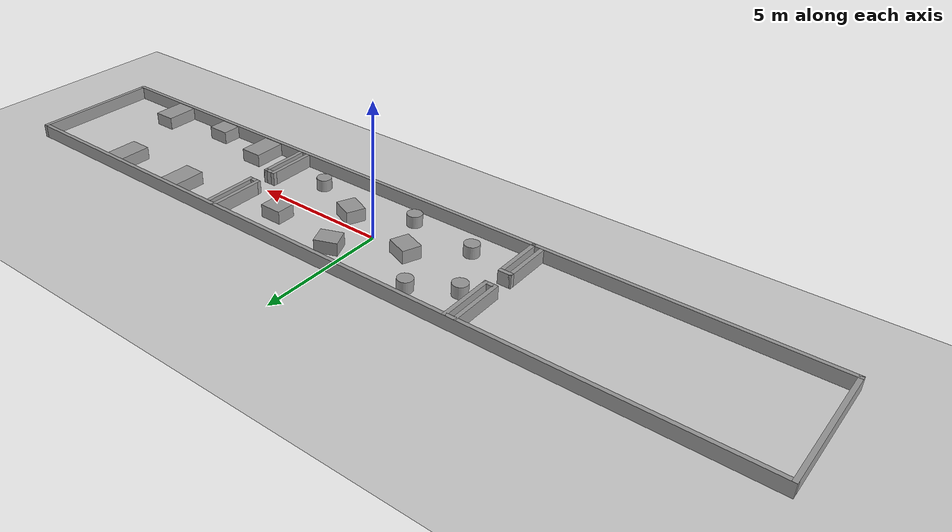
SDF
<sdf version="1.6">
 <world name="default">
  <plugin filename="gz-sim-physics-system" name="gz::sim::systems::Physics"/>
  <plugin filename="gz-sim-user-commands-system" name="gz::sim::systems::UserCommands"/>
  <plugin filename="gz-sim-scene-broadcaster-system" name="gz::sim::systems::SceneBroadcaster"/>
  <plugin filename="gz-sim-contact-system" name="gz::sim::systems::Contact"/>
  <plugin filename="gz-sim-sensors-system" name="gz::sim::systems::Sensors">
   <render_engine>ogre</render_engine>
  </plugin>
  <light name="sun" type="directional">
   <pose>0 0 10 0 -0 0</pose>
   <diffuse>0.8 0.8 0.8 1</diffuse>
   <specular>0.2 0.2 0.2 1</specular>
   <attenuation>
    <range>1000</range>
    <constant>0.9</constant>
    <linear>0.01</linear>
    <quadratic>0.001</quadratic>
   </attenuation>
   <direction>-0.5 0.1 -0.9</direction>
  </light>
  <model name="ground_plane">
   <static>1</static>
   <link name="link">
    <collision name="collision">
     <geometry><plane><normal>0 0 1</normal><size>100 100</size></plane></geometry>
     <surface><friction><ode><mu>100</mu><mu2>50</mu2></ode></friction></surface>
    </collision>
    <visual name="visual">
     <cast_shadows>0</cast_shadows>
     <geometry><plane><normal>0 0 1</normal><size>100 100</size></plane></geometry>
     <material>
      <script><uri>file://media/materials/scripts/gazebo.material</uri><name>Gazebo/Grey</name></script>
     </material>
    </visual>
   </link>
  </model>
  <gravity>0 0 -9.8</gravity>
  <magnetic_field>6e-06 2.3e-05 -4.2e-05</magnetic_field>
  <atmosphere type="adiabatic"/>
  <physics name="default_physics" default="0" type="ode">
   <max_step_size>0.001</max_step_size>
   <real_time_factor>1</real_time_factor>
   <real_time_update_rate>1000</real_time_update_rate>
  </physics>
  <scene><ambient>0.4 0.4 0.4 1</ambient><background>0.7 0.7 0.7 1</background><shadows>1</shadows></scene>
  <audio><device>default</device></audio>
  <spherical_coordinates>
   <surface_model>EARTH_WGS84</surface_model>
   <latitude_deg>0</latitude_deg>
   <longitude_deg>0</longitude_deg>
   <elevation>0</elevation>
   <heading_deg>0</heading_deg>
  </spherical_coordinates>
  <model name="exp_empty_rooms">
   <pose>-0.0311 0.006065 0 0 -0 0</pose>
   <link name="Wall_0">
    <collision name="Wall_0_Collision">
     <geometry><box><size>5 0.15 0.5</size></box></geometry>
     <pose>0 0 0.25 0 -0 0</pose>
    </collision>
    <visual name="Wall_0_Visual">
     <pose>0 0 0.25 0 -0 0</pose>
     <geometry><box><size>5 0.15 0.5</size></box></geometry>
     <material>
      <script><uri>file://media/materials/scripts/gazebo.material</uri><name>Gazebo/Grey</name></script>
      <ambient>1 1 1 1</ambient>
     </material>
     <meta><layer>0</layer></meta>
    </visual>
    <pose>-14.925 0 0 0 -0 -1.5708</pose>
   </link>
   <link name="Wall_1">
    <collision name="Wall_1_Collision">
     <geometry><box><size>30 0.15 0.5</size></box></geometry>
     <pose>0 0 0.25 0 -0 0</pose>
    </collision>
    <visual name="Wall_1_Visual">
     <pose>0 0 0.25 0 -0 0</pose>
     <geometry><box><size>30 0.15 0.5</size></box></geometry>
     <material>
      <script><uri>file://media/materials/scripts/gazebo.material</uri><name>Gazebo/Grey</name></script>
      <ambient>1 1 1 1</ambient>
     </material>
     <meta><layer>0</layer></meta>
    </visual>
    <pose>0 -2.425 0 0 -0 0</pose>
   </link>
   <link name="Wall_10">
    <collision name="Wall_10_Collision">
     <geometry><box><size>2.25 0.15 0.5</size></box></geometry>
     <pose>0 0 0.25 0 -0 0</pose>
    </collision>
    <visual name="Wall_10_Visual">
     <pose>0 0 0.25 0 -0 0</pose>
     <geometry><box><size>2.25 0.15 0.5</size></box></geometry>
     <material>
      <script><uri>file://media/materials/scripts/gazebo.material</uri><name>Gazebo/Grey</name></script>
      <ambient>1 1 1 1</ambient>
     </material>
     <meta><layer>0</layer></meta>
    </visual>
    <pose>-5.055 1.375 0 0 -0 -1.5708</pose>
   </link>
   <link name="Wall_11">
    <collision name="Wall_11_Collision">
     <geometry><box><size>0.5 0.15 0.5</size></box></geometry>
     <pose>0 0 0.25 0 -0 0</pose>
    </collision>
    <visual name="Wall_11_Visual">
     <pose>0 0 0.25 0 -0 0</pose>
     <geometry><box><size>0.5 0.15 0.5</size></box></geometry>
     <material>
      <script><uri>file://media/materials/scripts/gazebo.material</uri><name>Gazebo/Grey</name></script>
      <ambient>1 1 1 1</ambient>
     </material>
     <meta><layer>0</layer></meta>
    </visual>
    <pose>-4.88 0.325 0 0 -0 0</pose>
   </link>
   <link name="Wall_12">
    <collision name="Wall_12_Collision">
     <geometry><box><size>2.25 0.15 0.5</size></box></geometry>
     <pose>0 0 0.25 0 -0 0</pose>
    </collision>
    <visual name="Wall_12_Visual">
     <pose>0 0 0.25 0 -0 0</pose>
     <geometry><box><size>2.25 0.15 0.5</size></box></geometry>
     <material>
      <script><uri>file://media/materials/scripts/gazebo.material</uri><name>Gazebo/Grey</name></script>
      <ambient>1 1 1 1</ambient>
     </material>
     <meta><layer>0</layer></meta>
    </visual>
    <pose>-4.705 1.375 0 0 -0 1.5708</pose>
   </link>
   <link name="Wall_16">
    <collision name="Wall_16_Collision">
     <geometry><box><size>0.5 0.15 0.5</size></box></geometry>
     <pose>0 0 0.25 0 -0 0</pose>
    </collision>
    <visual name="Wall_16_Visual">
     <pose>0 0 0.25 0 -0 0</pose>
     <geometry><box><size>0.5 0.15 0.5</size></box></geometry>
     <material>
      <script><uri>file://media/materials/scripts/gazebo.material</uri><name>Gazebo/Grey</name></script>
      <ambient>1 1 1 1</ambient>
     </material>
     <meta><layer>0</layer></meta>
    </visual>
    <pose>-4.88 -0.525 0 0 -0 0</pose>
   </link>
   <link name="Wall_17">
    <collision name="Wall_17_Collision">
     <geometry><box><size>2 0.15 0.5</size></box></geometry>
     <pose>0 0 0.25 0 -0 0</pose>
    </collision>
    <visual name="Wall_17_Visual">
     <pose>0 0 0.25 0 -0 0</pose>
     <geometry><box><size>2 0.15 0.5</size></box></geometry>
     <material>
      <script><uri>file://media/materials/scripts/gazebo.material</uri><name>Gazebo/Grey</name></script>
      <ambient>1 1 1 1</ambient>
     </material>
     <meta><layer>0</layer></meta>
    </visual>
    <pose>-4.705 -1.45 0 0 -0 -1.5708</pose>
   </link>
   <link name="Wall_19">
    <collision name="Wall_19_Collision">
     <geometry><box><size>2 0.15 0.5</size></box></geometry>
     <pose>0 0 0.25 0 -0 0</pose>
    </collision>
    <visual name="Wall_19_Visual">
     <pose>0 0 0.25 0 -0 0</pose>
     <geometry><box><size>2 0.15 0.5</size></box></geometry>
     <material>
      <script><uri>file://media/materials/scripts/gazebo.material</uri><name>Gazebo/Grey</name></script>
      <ambient>1 1 1 1</ambient>
     </material>
     <meta><layer>0</layer></meta>
    </visual>
    <pose>-5.055 -1.45 0 0 -0 -1.5708</pose>
   </link>
   <link name="Wall_2">
    <collision name="Wall_2_Collision">
     <geometry><box><size>5 0.15 0.5</size></box></geometry>
     <pose>0 0 0.25 0 -0 0</pose>
    </collision>
    <visual name="Wall_2_Visual">
     <pose>0 0 0.25 0 -0 0</pose>
     <geometry><box><size>5 0.15 0.5</size></box></geometry>
     <material>
      <script><uri>file://media/materials/scripts/gazebo.material</uri><name>Gazebo/Grey</name></script>
      <ambient>1 1 1 1</ambient>
     </material>
     <meta><layer>0</layer></meta>
    </visual>
    <pose>14.925 0 0 0 -0 1.5708</pose>
   </link>
   <link name="Wall_3">
    <collision name="Wall_3_Collision">
     <geometry><box><size>30 0.15 0.5</size></box></geometry>
     <pose>0 0 0.25 0 -0 0</pose>
    </collision>
    <visual name="Wall_3_Visual">
     <pose>0 0 0.25 0 -0 0</pose>
     <geometry><box><size>30 0.15 0.5</size></box></geometry>
     <material>
      <script><uri>file://media/materials/scripts/gazebo.material</uri><name>Gazebo/Grey</name></script>
      <ambient>1 1 1 1</ambient>
     </material>
     <meta><layer>0</layer></meta>
    </visual>
    <pose>0 2.425 0 0 -0 3.14159</pose>
   </link>
   <link name="Wall_38">
    <collision name="Wall_38_Collision">
     <geometry><box><size>2 0.15 0.5</size></box></geometry>
     <pose>0 0 0.25 0 -0 0</pose>
    </collision>
    <visual name="Wall_38_Visual">
     <pose>0 0 0.25 0 -0 0</pose>
     <geometry><box><size>2 0.15 0.5</size></box></geometry>
     <material>
      <script><uri>file://media/materials/scripts/gazebo.material</uri><name>Gazebo/Grey</name></script>
      <ambient>1 1 1 1</ambient>
     </material>
     <meta><layer>0</layer></meta>
    </visual>
    <pose>5.185 -1.44 0 0 -0 -1.5708</pose>
   </link>
   <link name="Wall_43">
    <collision name="Wall_43_Collision">
     <geometry><box><size>0.5 0.15 0.5</size></box></geometry>
     <pose>0 0 0.25 0 -0 0</pose>
    </collision>
    <visual name="Wall_43_Visual">
     <pose>0 0 0.25 0 -0 0</pose>
     <geometry><box><size>0.5 0.15 0.5</size></box></geometry>
     <material>
      <script><uri>file://media/materials/scripts/gazebo.material</uri><name>Gazebo/Grey</name></script>
      <ambient>1 1 1 1</ambient>
     </material>
     <meta><layer>0</layer></meta>
    </visual>
    <pose>5.36 -0.515 0 0 -0 0</pose>
   </link>
   <link name="Wall_44">
    <collision name="Wall_44_Collision">
     <geometry><box><size>2 0.15 0.5</size></box></geometry>
     <pose>0 0 0.25 0 -0 0</pose>
    </collision>
    <visual name="Wall_44_Visual">
     <pose>0 0 0.25 0 -0 0</pose>
     <geometry><box><size>2 0.15 0.5</size></box></geometry>
     <material>
      <script><uri>file://media/materials/scripts/gazebo.material</uri><name>Gazebo/Grey</name></script>
      <ambient>1 1 1 1</ambient>
     </material>
     <meta><layer>0</layer></meta>
    </visual>
    <pose>5.535 -1.44 0 0 -0 -1.5708</pose>
   </link>
   <link name="Wall_47">
    <collision name="Wall_47_Collision">
     <geometry><box><size>2.25 0.15 0.5</size></box></geometry>
     <pose>0 0 0.25 0 -0 0</pose>
    </collision>
    <visual name="Wall_47_Visual">
     <pose>0 0 0.25 0 -0 0</pose>
     <geometry><box><size>2.25 0.15 0.5</size></box></geometry>
     <material>
      <script><uri>file://media/materials/scripts/gazebo.material</uri><name>Gazebo/Grey</name></script>
      <ambient>1 1 1 1</ambient>
     </material>
     <meta><layer>0</layer></meta>
    </visual>
    <pose>5.175 1.365 0 0 -0 1.5708</pose>
   </link>
   <link name="Wall_49">
    <collision name="Wall_49_Collision">
     <geometry><box><size>0.5 0.15 0.5</size></box></geometry>
     <pose>0 0 0.25 0 -0 0</pose>
    </collision>
    <visual name="Wall_49_Visual">
     <pose>0 0 0.25 0 -0 0</pose>
     <geometry><box><size>0.5 0.15 0.5</size></box></geometry>
     <material>
      <script><uri>file://media/materials/scripts/gazebo.material</uri><name>Gazebo/Grey</name></script>
      <ambient>1 1 1 1</ambient>
     </material>
     <meta><layer>0</layer></meta>
    </visual>
    <pose>5.35 0.315 0 0 -0 0</pose>
   </link>
   <link name="Wall_51">
    <collision name="Wall_51_Collision">
     <geometry><box><size>2.25 0.15 0.5</size></box></geometry>
     <pose>0 0 0.25 0 -0 0</pose>
    </collision>
    <visual name="Wall_51_Visual">
     <pose>0 0 0.25 0 -0 0</pose>
     <geometry><box><size>2.25 0.15 0.5</size></box></geometry>
     <material>
      <script><uri>file://media/materials/scripts/gazebo.material</uri><name>Gazebo/Grey</name></script>
      <ambient>1 1 1 1</ambient>
     </material>
     <meta><layer>0</layer></meta>
    </visual>
    <pose>5.525 1.365 0 0 -0 1.5708</pose>
   </link>
   <static>1</static>
  </model>
  <model name="unit_box_clone">
   <pose>-1.46679 0.124105 0.243065 0 0 -0.368363</pose>
   <link name="link">
    <inertial>
     <mass>1</mass>
     <inertia>
      <ixx>0.166667</ixx>
      <ixy>0</ixy>
      <ixz>0</ixz>
      <iyy>0.166667</iyy>
      <iyz>0</iyz>
      <izz>0.166667</izz>
     </inertia>
    </inertial>
    <collision name="collision">
     <geometry><box><size>0.832545 0.712184 0.486131</size></box></geometry>
    </collision>
    <visual name="visual">
     <geometry><box><size>0.832545 0.712184 0.486131</size></box></geometry>
     <material>
      <script><name>Gazebo/Grey</name><uri>file://media/materials/scripts/gazebo.material</uri></script>
     </material>
    </visual>
   </link>
  </model>
  <model name="unit_box_clone_clone">
   <pose>0.704279 1.42665 0.243065 0 -0 0.381073</pose>
   <link name="link">
    <inertial>
     <mass>1</mass>
     <inertia>
      <ixx>0.166667</ixx>
      <ixy>0</ixy>
      <ixz>0</ixz>
      <iyy>0.166667</iyy>
      <iyz>0</iyz>
      <izz>0.166667</izz>
     </inertia>
    </inertial>
    <collision name="collision">
     <geometry><box><size>0.832545 0.712184 0.486131</size></box></geometry>
    </collision>
    <visual name="visual">
     <geometry><box><size>0.832545 0.712184 0.486131</size></box></geometry>
     <material>
      <script><name>Gazebo/Grey</name><uri>file://media/materials/scripts/gazebo.material</uri></script>
     </material>
    </visual>
   </link>
  </model>
  <model name="unit_box_clone_clone_1">
   <pose>1.46396 -0.547771 0.243065 0 0 -0.410182</pose>
   <link name="link">
    <inertial>
     <mass>1</mass>
     <inertia>
      <ixx>0.166667</ixx>
      <ixy>0</ixy>
      <ixz>0</ixz>
      <iyy>0.166667</iyy>
      <iyz>0</iyz>
      <izz>0.166667</izz>
     </inertia>
    </inertial>
    <collision name="collision">
     <geometry><box><size>0.832545 0.712184 0.486131</size></box></geometry>
    </collision>
    <visual name="visual">
     <geometry><box><size>0.832545 0.712184 0.486131</size></box></geometry>
     <material>
      <script><name>Gazebo/Grey</name><uri>file://media/materials/scripts/gazebo.material</uri></script>
     </material>
    </visual>
   </link>
  </model>
  <model name="unit_box_clone_clone_2">
   <pose>3.45364 1.03602 0.243065 0 -0 0</pose>
   <link name="link">
    <inertial>
     <mass>1</mass>
     <inertia>
      <ixx>0.166667</ixx>
      <ixy>0</ixy>
      <ixz>0</ixz>
      <iyy>0.166667</iyy>
      <iyz>0</iyz>
      <izz>0.166667</izz>
     </inertia>
    </inertial>
    <collision name="collision">
     <geometry><box><size>0.832545 0.712184 0.486131</size></box></geometry>
    </collision>
    <visual name="visual">
     <geometry><box><size>0.832545 0.712184 0.486131</size></box></geometry>
     <material>
      <script><name>Gazebo/Grey</name><uri>file://media/materials/scripts/gazebo.material</uri></script>
     </material>
    </visual>
   </link>
  </model>
  <model name="unit_box_clone_clone_2_clone">
   <pose>9.34147 -1.9802 0.243065 0 0 -3e-06</pose>
   <link name="link">
    <inertial>
     <mass>1</mass>
     <inertia>
      <ixx>0.166667</ixx>
      <ixy>0</ixy>
      <ixz>0</ixz>
      <iyy>0.166667</iyy>
      <iyz>0</iyz>
      <izz>0.166667</izz>
     </inertia>
    </inertial>
    <collision name="collision"><geometry><box><size>0.832545 0.71218 0.486131</size></box></geometry></collision>
    <visual name="visual">
     <geometry><box><size>0.832545 0.71218 0.486131</size></box></geometry>
     <material>
      <script><name>Gazebo/Grey</name><uri>file://media/materials/scripts/gazebo.material</uri></script>
     </material>
    </visual>
   </link>
  </model>
  <model name="unit_box_clone_clone_2_clone_clone">
   <pose>6.96963 -1.72255 0.243065 0 0 -3e-06</pose>
   <link name="link">
    <inertial>
     <mass>1</mass>
     <inertia>
      <ixx>0.166667</ixx>
      <ixy>0</ixy>
      <ixz>0</ixz>
      <iyy>0.166667</iyy>
      <iyz>0</iyz>
      <izz>0.166667</izz>
     </inertia>
    </inertial>
    <collision name="collision"><geometry><box><size>0.832545 1.22961 0.486131</size></box></geometry></collision>
    <visual name="visual">
     <geometry><box><size>0.832545 1.22961 0.486131</size></box></geometry>
     <material>
      <script><name>Gazebo/Grey</name><uri>file://media/materials/scripts/gazebo.material</uri></script>
     </material>
    </visual>
   </link>
  </model>
  <model name="unit_box_clone_clone_2_clone_clone_clone">
   <pose>10.6858 1.74123 0.243065 0 0 -3e-06</pose>
   <link name="link">
    <inertial>
     <mass>1</mass>
     <inertia>
      <ixx>0.166667</ixx>
      <ixy>0</ixy>
      <ixz>0</ixz>
      <iyy>0.166667</iyy>
      <iyz>0</iyz>
      <izz>0.166667</izz>
     </inertia>
    </inertial>
    <collision name="collision"><geometry><box><size>0.832545 1.22961 0.486131</size></box></geometry></collision>
    <visual name="visual">
     <geometry><box><size>0.832545 1.22961 0.486131</size></box></geometry>
     <material>
      <script><name>Gazebo/Grey</name><uri>file://media/materials/scripts/gazebo.material</uri></script>
     </material>
    </visual>
   </link>
  </model>
  <model name="unit_box_clone_clone_2_clone_clone_clone_0">
   <pose>11.9853 -1.72376 0.243065 0 0 -3e-06</pose>
   <link name="link">
    <inertial>
     <mass>1</mass>
     <inertia>
      <ixx>0.166667</ixx>
      <ixy>0</ixy>
      <ixz>0</ixz>
      <iyy>0.166667</iyy>
      <iyz>0</iyz>
      <izz>0.166667</izz>
     </inertia>
    </inertial>
    <collision name="collision"><geometry><box><size>0.832545 1.22961 0.486131</size></box></geometry></collision>
    <visual name="visual">
     <geometry><box><size>0.832545 1.22961 0.486131</size></box></geometry>
     <material>
      <script><name>Gazebo/Grey</name><uri>file://media/materials/scripts/gazebo.material</uri></script>
     </material>
    </visual>
   </link>
  </model>
  <model name="unit_box_clone_clone_2_clone_clone_clone_1">
   <pose>7.60902 1.74123 0.243065 0 0 -3e-06</pose>
   <link name="link">
    <inertial>
     <mass>1</mass>
     <inertia>
      <ixx>0.166667</ixx>
      <ixy>0</ixy>
      <ixz>0</ixz>
      <iyy>0.166667</iyy>
      <iyz>0</iyz>
      <izz>0.166667</izz>
     </inertia>
    </inertial>
    <collision name="collision"><geometry><box><size>0.832545 1.22961 0.486131</size></box></geometry></collision>
    <visual name="visual">
     <geometry><box><size>0.832545 1.22961 0.486131</size></box></geometry>
     <material>
      <script><name>Gazebo/Grey</name><uri>file://media/materials/scripts/gazebo.material</uri></script>
     </material>
    </visual>
   </link>
  </model>
  <model name="unit_cylinder">
   <pose>-2.66443 1.66278 0.22289 2e-06 2e-06 0</pose>
   <link name="link">
    <inertial>
     <mass>1</mass>
     <inertia><ixx>0.145833</ixx><ixy>0</ixy><ixz>0</ixz><iyy>0.145833</iyy><iyz>0</iyz><izz>0.125</izz></inertia>
    </inertial>
    <collision name="collision">
     <geometry><cylinder><radius>0.278354</radius><length>0.445785</length></cylinder></geometry>
    </collision>
    <visual name="visual">
     <geometry><cylinder><radius>0.278354</radius><length>0.445785</length></cylinder></geometry>
     <material>
      <script><name>Gazebo/Grey</name><uri>file://media/materials/scripts/gazebo.material</uri></script>
     </material>
    </visual>
   </link>
  </model>
  <model name="unit_cylinder_clone">
   <pose>-3.11174 -1.27262 0.222892 -0 -0 -0</pose>
   <link name="link">
    <inertial>
     <mass>1</mass>
     <inertia><ixx>0.145833</ixx><ixy>0</ixy><ixz>0</ixz><iyy>0.145833</iyy><iyz>0</iyz><izz>0.125</izz></inertia>
    </inertial>
    <collision name="collision">
     <geometry><cylinder><radius>0.278354</radius><length>0.445785</length></cylinder></geometry>
    </collision>
    <visual name="visual">
     <geometry><cylinder><radius>0.278354</radius><length>0.445785</length></cylinder></geometry>
     <material>
      <script><name>Gazebo/Grey</name><uri>file://media/materials/scripts/gazebo.material</uri></script>
     </material>
    </visual>
   </link>
  </model>
  <model name="unit_cylinder_clone_0">
   <pose>3.55449 -1.48911 0.222885 -2e-06 -2e-06 0</pose>
   <link name="link">
    <inertial>
     <mass>1</mass>
     <inertia><ixx>0.145833</ixx><ixy>0</ixy><ixz>0</ixz><iyy>0.145833</iyy><iyz>0</iyz><izz>0.125</izz></inertia>
    </inertial>
    <collision name="collision">
     <geometry><cylinder><radius>0.278354</radius><length>0.445785</length></cylinder></geometry>
    </collision>
    <visual name="visual">
     <geometry><cylinder><radius>0.278354</radius><length>0.445785</length></cylinder></geometry>
     <material>
      <script><name>Gazebo/Grey</name><uri>file://media/materials/scripts/gazebo.material</uri></script>
     </material>
    </visual>
   </link>
  </model>
  <model name="unit_cylinder_clone_0_clone">
   <pose>-0.526371 -1.58176 0.222885 -2e-06 -2e-06 0</pose>
   <link name="link">
    <inertial>
     <mass>1</mass>
     <inertia><ixx>0.145833</ixx><ixy>0</ixy><ixz>0</ixz><iyy>0.145833</iyy><iyz>0</iyz><izz>0.125</izz></inertia>
    </inertial>
    <collision name="collision">
     <geometry><cylinder><radius>0.278354</radius><length>0.445785</length></cylinder></geometry>
    </collision>
    <visual name="visual">
     <geometry><cylinder><radius>0.278354</radius><length>0.445785</length></cylinder></geometry>
     <material>
      <script><name>Gazebo/Grey</name><uri>file://media/materials/scripts/gazebo.material</uri></script>
     </material>
    </visual>
   </link>
  </model>
  <model name="unit_cylinder_clone_1">
   <pose>-4.12027 0.785227 0.222885 -2e-06 -2e-06 0</pose>
   <link name="link">
    <inertial>
     <mass>1</mass>
     <inertia><ixx>0.145833</ixx><ixy>0</ixy><ixz>0</ixz><iyy>0.145833</iyy><iyz>0</iyz><izz>0.125</izz></inertia>
    </inertial>
    <collision name="collision">
     <geometry><cylinder><radius>0.278354</radius><length>0.445785</length></cylinder></geometry>
    </collision>
    <visual name="visual">
     <geometry><cylinder><radius>0.278354</radius><length>0.445785</length></cylinder></geometry>
     <material>
      <script><name>Gazebo/Grey</name><uri>file://media/materials/scripts/gazebo.material</uri></script>
     </material>
    </visual>
   </link>
  </model>
 </world>
</sdf>
